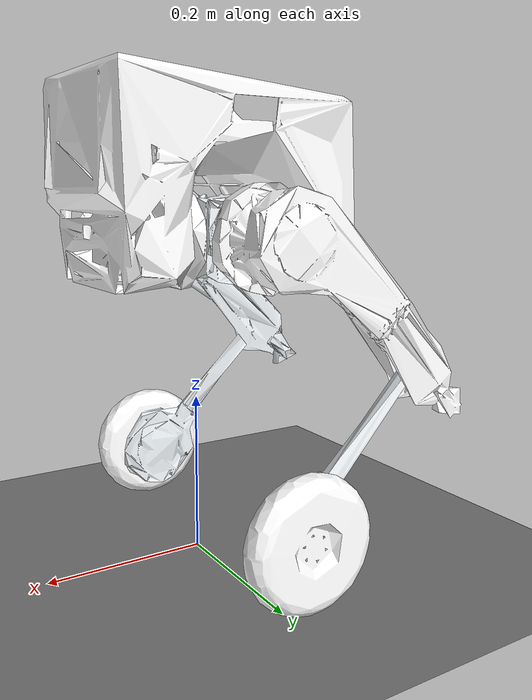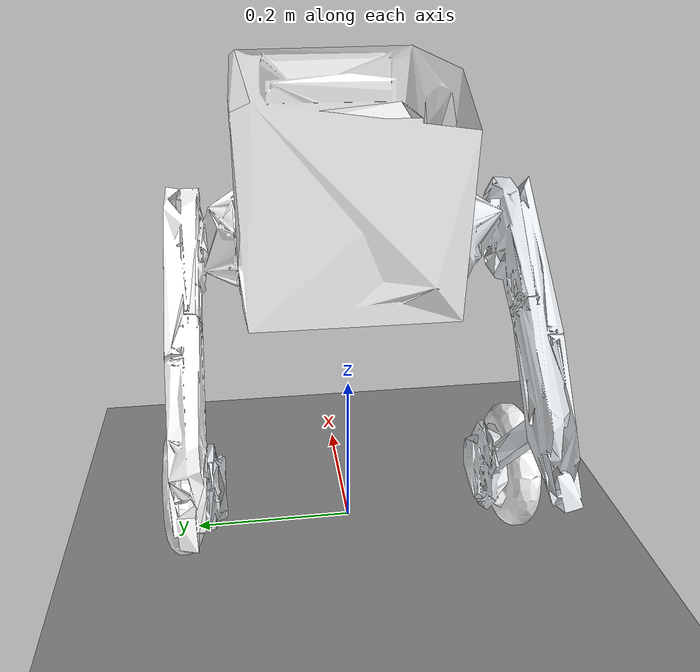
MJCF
<?xml version='1.0' encoding='utf-8'?>
<mujoco model="passive_wheeled_biped">
  <compiler angle="radian" meshdir="../meshes" autolimits="true" balanceinertia="true" />
  <option timestep="0.001" integrator="implicitfast" gravity="0 0 -9.81" />
  <asset>
    <mesh name="base_link" file="base_link.STL" />
    <mesh name="left_hip_pitch_link" file="left_hip_pitch_link.STL" />
    <mesh name="left_knee_link" file="left_knee_link.STL" />
    <mesh name="left_wheel_link" file="left_wheel_link.STL" />
    <mesh name="left_roll_link" file="left_yaw_link.STL" />
    <mesh name="right_hip_pitch_link" file="right_hip_pitch_link.STL" />
    <mesh name="right_knee_link" file="right_knee_link.STL" />
    <mesh name="right_wheel_link" file="right_wheel_link.STL" />
    <mesh name="right_roll_link" file="right_yaw_link.STL" />
  </asset>
  <contact>
    <exclude body1="base_link" body2="left_hip_pitch_link" />
    <exclude body1="base_link" body2="left_roll_link" />
    <exclude body1="base_link" body2="right_hip_pitch_link" />
    <exclude body1="base_link" body2="right_roll_link" />
    <exclude body1="left_hip_pitch_link" body2="left_knee_link" />
    <exclude body1="left_hip_pitch_link" body2="left_roll_link" />
    <exclude body1="left_knee_link" body2="left_wheel_link" />
    <exclude body1="right_hip_pitch_link" body2="right_knee_link" />
    <exclude body1="right_hip_pitch_link" body2="right_roll_link" />
    <exclude body1="right_knee_link" body2="right_wheel_link" />
  </contact>
  <worldbody>
    <geom name="floor" type="plane" size="0 0 0.1" friction="1.0 0.005 0.0001" />
    <body name="base_link" pos="0 0 0.343355956377">
      <freejoint name="base_freejoint" />
      <site name="base_imu_site" pos="0 0 0.08" size="0.015" rgba="0 0.7 1 1" />
      <inertial pos="-0.00172337629744 0.00351501964247 0.116696890658" mass="7.5370707" fullinertia="0.0553404 0.0981545 0.1037058 -0.0003341 -0.0050779 -0.0000237" />
      <geom name="base_visual" type="mesh" mesh="base_link" pos="0 0 0" quat="1 0 0 0" rgba="1 1 1 1" contype="0" conaffinity="0" group="1" />
      <geom name="base_collision" type="mesh" mesh="base_link" pos="0 0 0" quat="1 0 0 0" rgba="0 0 0 0" contype="1" conaffinity="1" group="3" />
      <body name="left_roll_link" pos="0.034075 0.056503 0.061583" quat="0.499998163397 0.499999999997 -0.500001836603 -0.499999999997">
        <joint name="left_roll_joint" type="hinge" axis="0 0 -1" damping="0.1" range="-0.3489 0.6978" />
        <inertial pos="-0.0215308346662 -4.99102705892e-05 0.0447563529326" mass="1.1405510" fullinertia="0.0010100 0.0008718 0.0004340 -0.0000008 0.0000135 0.0000012" />
        <geom name="left_roll_visual" type="mesh" mesh="left_roll_link" pos="0 0 0" quat="1 0 0 0" rgba="0.898039215686275 0.917647058823529 0.929411764705882 1" contype="0" conaffinity="0" group="1" />
        <geom name="left_roll_collision" type="mesh" mesh="left_roll_link" pos="0 0 0" quat="1 0 0 0" rgba="0 0 0 0" contype="1" conaffinity="1" group="3" />
        <body name="left_hip_pitch_link" pos="-0.069997 -0.0010952 0.060082" quat="0.707105482511 0 0.707108079859 0">
          <joint name="left_hip_pitch_joint" type="hinge" axis="0 0 -1" damping="0.1" range="-1.22 0.87" />
          <inertial pos="-0.054939667 -0.0388954532328 -0.0324790229476" mass="1.7219945" fullinertia="0.0068887 0.0092514 0.0138889 -0.0060752 -0.0017370 -0.0013122" />
          <geom name="left_hip_pitch_visual" type="mesh" mesh="left_hip_pitch_link" pos="0 0 0" quat="1 0 0 0" rgba="1 1 1 1" contype="0" conaffinity="0" group="1" />
          <geom name="left_hip_pitch_collision" type="mesh" mesh="left_hip_pitch_link" pos="0 0 0" quat="1 0 0 0" rgba="0 0 0 0" contype="1" conaffinity="1" group="3" />
          <body name="left_knee_link" pos="-0.16255 -0.16154 -0.0595" quat="1.34924357313e-11 -3.67320510332e-06 0.999999999987 -3.67320510332e-06">
            <joint name="left_knee_joint" type="hinge" axis="0 0 1" damping="0.1" range="-1.134 0.75049" />
            <inertial pos="-0.112370333721 -0.112602733657 -0.00306657889094" mass="1.2100000" fullinertia="0.0029586 0.0029615 0.0057457 -0.0026493 0.0002013 0.0001991" />
            <geom name="left_knee_visual" type="mesh" mesh="left_knee_link" pos="0 0 0" quat="1 0 0 0" rgba="0.898039215686275 0.917647058823529 0.929411764705882 1" contype="0" conaffinity="0" group="1" />
            <geom name="left_knee_collision" type="mesh" mesh="left_knee_link" pos="0 0 0" quat="1 0 0 0" rgba="0 0 0 0" contype="1" conaffinity="1" group="3" />
            <body name="left_wheel_link" pos="-0.16263 -0.16263 0.0368" quat="1 0 0 0">
              <joint name="left_wheel_joint" type="hinge" axis="0 0 1" damping="0.01" />
              <inertial pos="7.21644966006e-16 7.77156117238e-16 -0.00887809087425" mass="0.2200000" fullinertia="0.0004356 0.0004356 0.0008222 0 0 0" />
              <geom name="left_wheel_visual" type="mesh" mesh="left_wheel_link" pos="0 0 0" quat="1 0 0 0" rgba="1 1 1 1" contype="0" conaffinity="0" group="1" />
              <geom name="left_wheel_collision" type="mesh" mesh="left_wheel_link" pos="0 0 0" quat="1 0 0 0" rgba="0 0 0 0" contype="1" conaffinity="1" group="3" margin="0.001" />
            </body>
          </body>
        </body>
      </body>
      <body name="right_roll_link" pos="0.034075 -0.056503 0.061583" quat="0.499998163397 0.499999999997 -0.500001836603 -0.499999999997">
        <joint name="right_roll_joint" type="hinge" axis="0 0 -1" damping="0.1" range="-0.3489 0.6978" />
        <inertial pos="0.0215308346662 4.99102705913e-05 0.0447705165513" mass="1.1405510" fullinertia="0.0010107 0.0008724 0.0004340 -0.0000008 -0.0000135 -0.0000012" />
        <geom name="right_roll_visual" type="mesh" mesh="right_roll_link" pos="0 0 0" quat="1 0 0 0" rgba="0.898039215686275 0.917647058823529 0.929411764705882 1" contype="0" conaffinity="0" group="1" />
        <geom name="right_roll_collision" type="mesh" mesh="right_roll_link" pos="0 0 0" quat="1 0 0 0" rgba="0 0 0 0" contype="1" conaffinity="1" group="3" />
        <body name="right_hip_pitch_link" pos="0.069997 0.0010952 0.060082" quat="0.707105482511 0 0.707108079859 0">
          <joint name="right_hip_pitch_joint" type="hinge" axis="0 0 1" damping="0.1" range="-1.22 0.87" />
          <inertial pos="-0.054939674268 -0.0409954166794 0.0324790691623" mass="1.7219945" fullinertia="0.0068882 0.0092514 0.0138884 -0.0060720 0.0017370 0.0013144" />
          <geom name="right_hip_pitch_visual" type="mesh" mesh="right_hip_pitch_link" pos="0 0 0" quat="1 0 0 0" rgba="0.898039215686275 0.917647058823529 0.929411764705882 1" contype="0" conaffinity="0" group="1" />
          <geom name="right_hip_pitch_collision" type="mesh" mesh="right_hip_pitch_link" pos="0 0 0" quat="1 0 0 0" rgba="0 0 0 0" contype="1" conaffinity="1" group="3" />
          <body name="right_knee_link" pos="-0.16255 -0.16373 0.0595" quat="1 0 0 0">
            <joint name="right_knee_joint" type="hinge" axis="0 0 1" damping="0.1" range="-1.134 0.75049" />
            <inertial pos="0.112607138155 -0.112418769168 -0.00306657888841" mass="1.2100000" fullinertia="0.0029667 0.0029591 0.0057515 0.0026522 -0.0002002 0.0002003" />
            <geom name="right_knee_visual" type="mesh" mesh="right_knee_link" pos="0 0 0" quat="1 0 0 0" rgba="0.898039215686275 0.917647058823529 0.929411764705882 1" contype="0" conaffinity="0" group="1" />
            <geom name="right_knee_collision" type="mesh" mesh="right_knee_link" pos="0 0 0" quat="1 0 0 0" rgba="0 0 0 0" contype="1" conaffinity="1" group="3" />
            <body name="right_wheel_link" pos="0.16263 -0.16263 0.0368" quat="1 0 0 0">
              <joint name="right_wheel_joint" type="hinge" axis="0 0 1" damping="0.01" />
              <inertial pos="-1.38777878078e-17 -5.55111512313e-17 -0.00887809087425" mass="0.2200000" fullinertia="0.0004356 0.0004356 0.0008222 0 0 0" />
              <geom name="right_wheel_visual" type="mesh" mesh="right_wheel_link" pos="0 0 0" quat="1 0 0 0" rgba="1 1 1 1" contype="0" conaffinity="0" group="1" />
              <geom name="right_wheel_collision" type="mesh" mesh="right_wheel_link" pos="0 0 0" quat="1 0 0 0" rgba="0 0 0 0" contype="1" conaffinity="1" group="3" margin="0.001" />
            </body>
          </body>
        </body>
      </body>
    </body>
  </worldbody>
  <actuator>
    <motor name="left_roll_joint_motor" joint="left_roll_joint" gear="1" ctrllimited="true" ctrlrange="-20 20" />
    <motor name="left_hip_pitch_joint_motor" joint="left_hip_pitch_joint" gear="1" ctrllimited="true" ctrlrange="-30 30" />
    <motor name="left_knee_joint_motor" joint="left_knee_joint" gear="1" ctrllimited="true" ctrlrange="-30 30" />
    <motor name="left_wheel_joint_motor" joint="left_wheel_joint" gear="1" ctrllimited="true" ctrlrange="-10 10" />
    <motor name="right_roll_joint_motor" joint="right_roll_joint" gear="1" ctrllimited="true" ctrlrange="-20 20" />
    <motor name="right_hip_pitch_joint_motor" joint="right_hip_pitch_joint" gear="1" ctrllimited="true" ctrlrange="-30 30" />
    <motor name="right_knee_joint_motor" joint="right_knee_joint" gear="1" ctrllimited="true" ctrlrange="-30 30" />
    <motor name="right_wheel_joint_motor" joint="right_wheel_joint" gear="1" ctrllimited="true" ctrlrange="-10 10" />
  </actuator>
  <equality>
    <weld name="fixed_base_weld" body1="world" body2="base_link" active="false" />
  </equality>
  <sensor>
    <gyro name="base_imu_gyro" site="base_imu_site" />
    <accelerometer name="base_imu_accel" site="base_imu_site" />
    <framequat name="base_imu_quat" objtype="site" objname="base_imu_site" />
  </sensor>
  <keyframe>
    <key name="home" qpos="0 0 0.343355956377 1 0 0 0 0 0 0 0 0 0 0 0" />
  </keyframe>
</mujoco>
